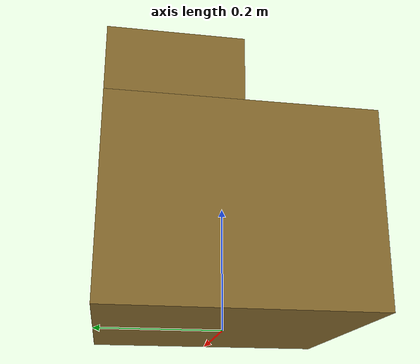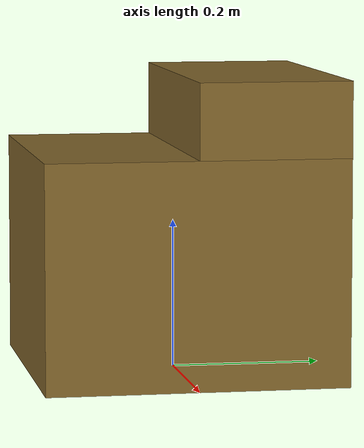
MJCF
<?xml version="1.0"?>
<mujoco model="shelf">
    <asset>
        <material name="shelf" rgba="0.51 0.4 0.17 1"/>
    </asset>

    <worldbody>
        <body name="root">
            <body pos="0 0.0 0.15">
                <geom size="0.2 0.2 0.15" type="box" material="shelf"/>
            </body>
            <body pos="0 0.1 0.35">
                <geom size="0.2 0.1 0.05" type="box" material="shelf"/>
            </body>
        </body>
    </worldbody>
</mujoco>
